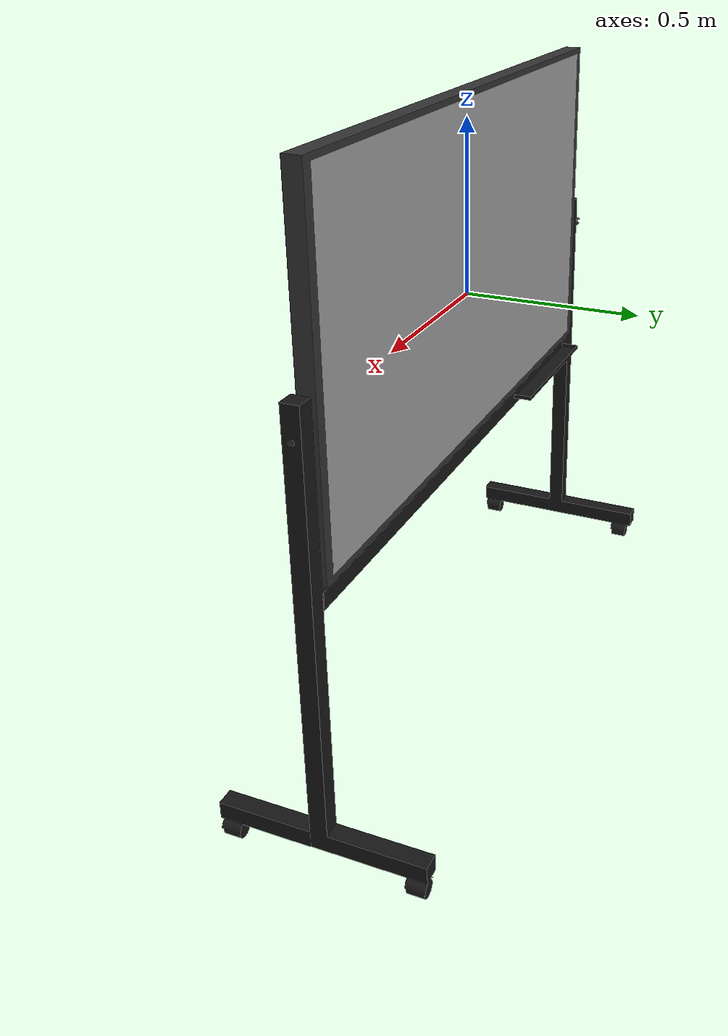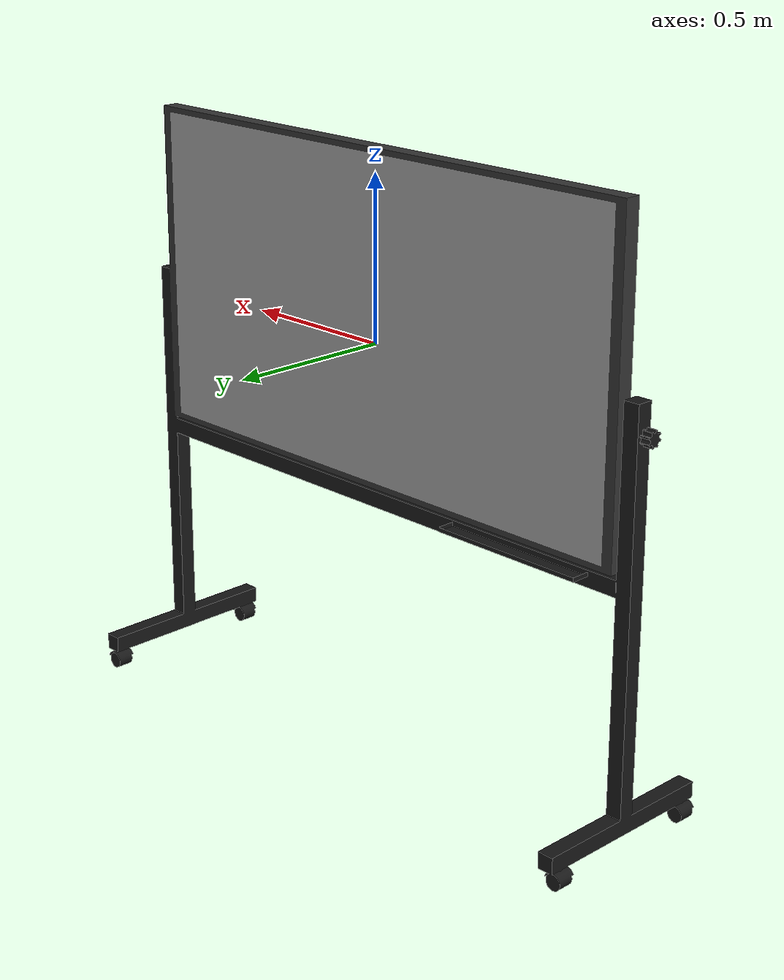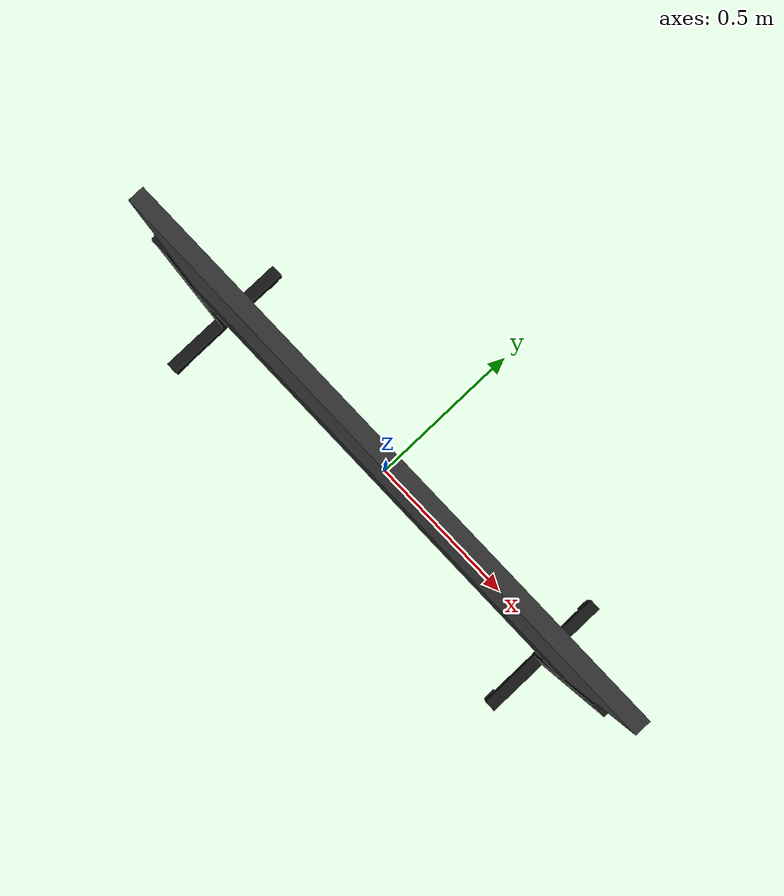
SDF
<?xml version='1.0'?>
<sdf version='1.5'>
    <model name="whiteboard_stand">
        <pose>0 0 0 0 0 0</pose>
        <static>false</static>
        <link name='model_body'>
            <visual name="visual">
                <geometry>
                    <mesh>
                        <uri>model://robert_gazebo/meshes/board_stand_visual.dae</uri>
                        <scale>1 1 1</scale>
                    </mesh>
                </geometry>
            </visual>

            <collision name="collision">
                <geometry>
                    <mesh>
                        <uri>model://robert_gazebo/meshes/board_stand_collision.dae</uri>
                        <scale>1 1 1</scale>
                    </mesh>
                </geometry>
            </collision>

            <inertial>
                <pose> 0 0 0 0 0 0</pose>
                <inertia>
                    <ixx>2.05</ixx>
                    <ixy>0</ixy>
                    <ixz>0</ixz>
                    <iyy>4.5</iyy>
                    <iyz>0</iyz>
                    <izz>3.16</izz>
                </inertia>
                <mass>10.0</mass>
            </inertial>
        </link>
    </model>
</sdf>
